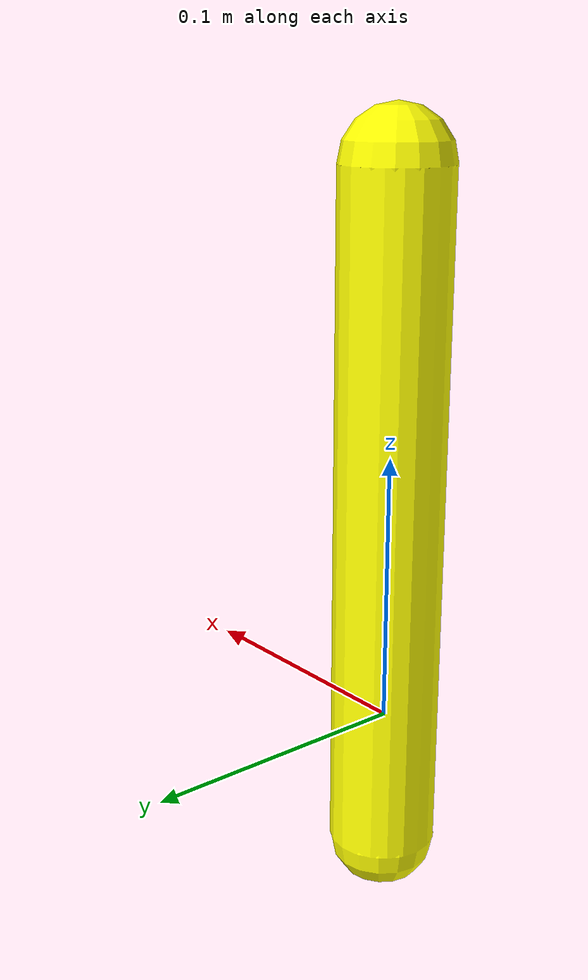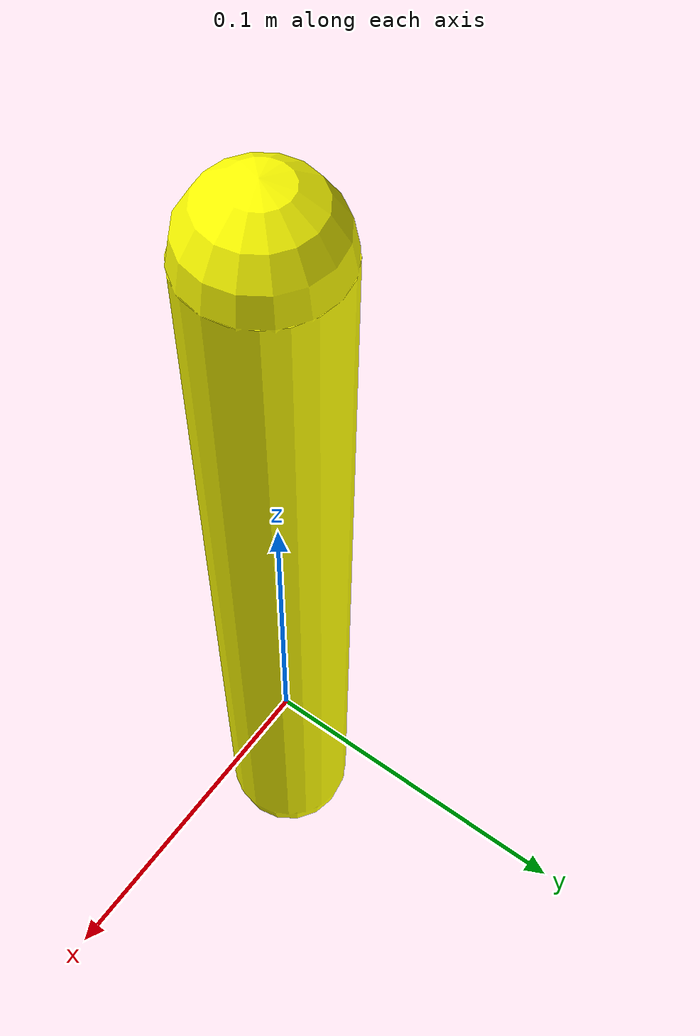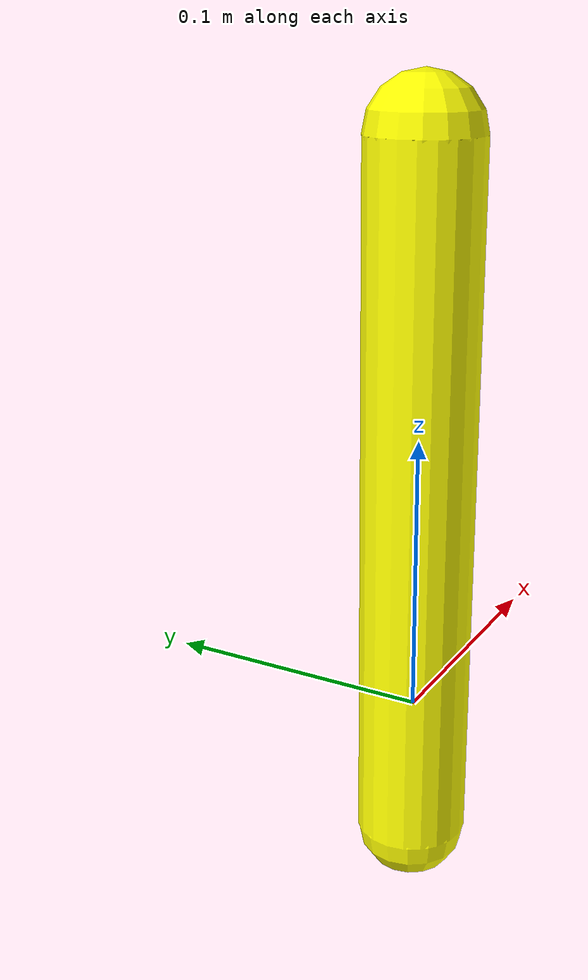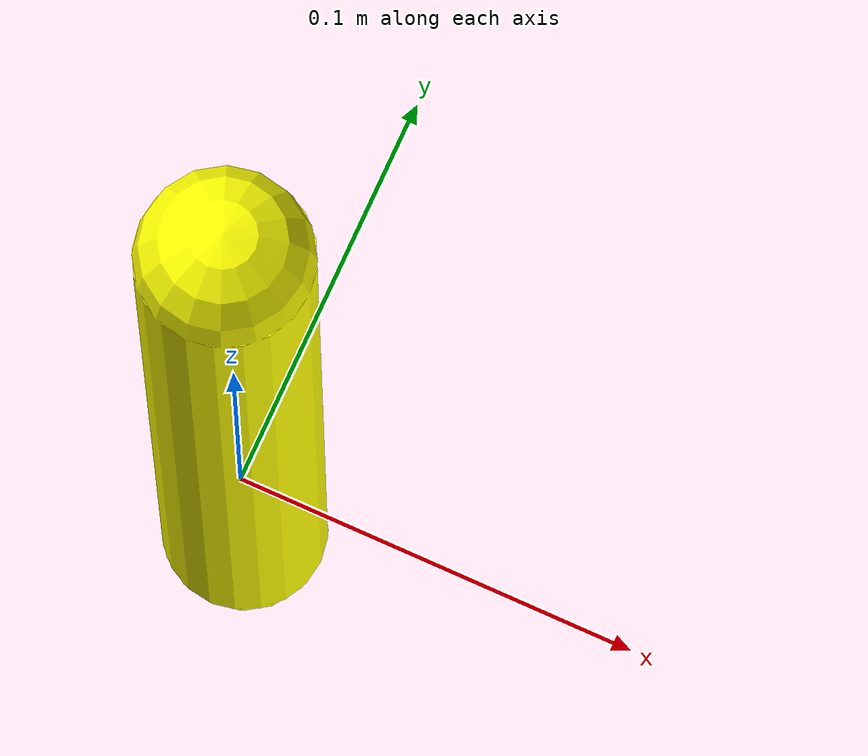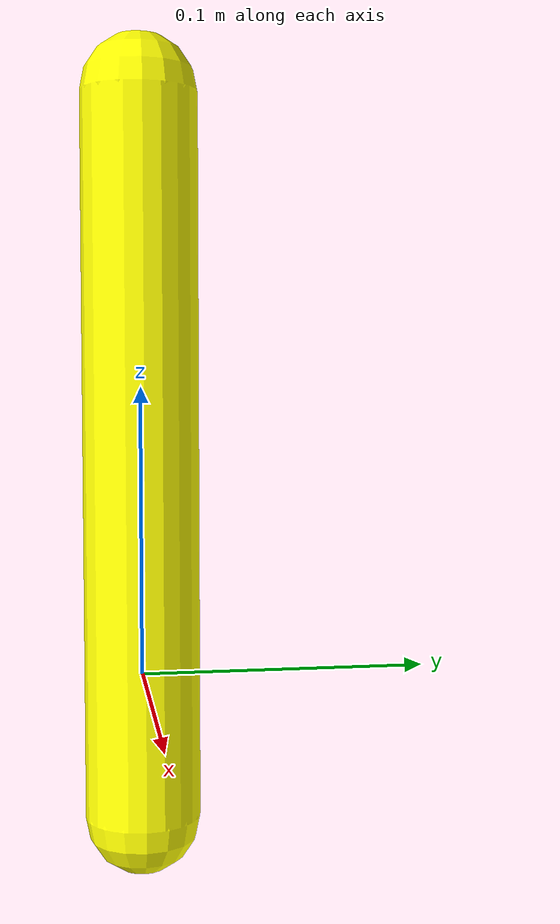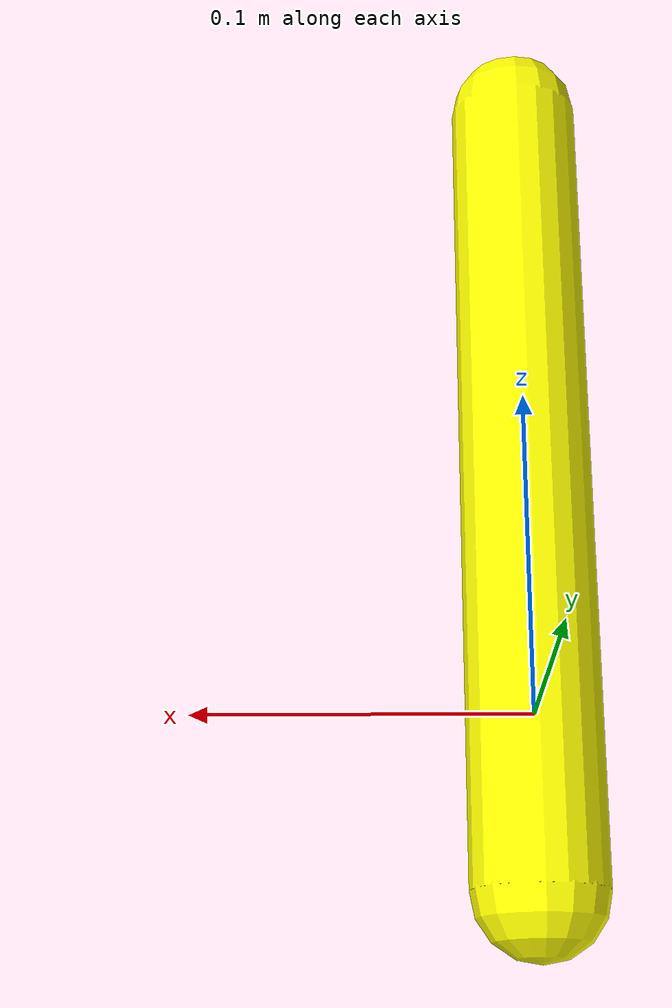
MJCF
<mujoco>
  <option timestep=".001">
  </option>

  <default>
    <joint type="hinge" axis="0 -1 0"/>
    <geom type="capsule" size=".02"/>
  </default>

  <worldbody>
    <light pos="0 -.4 1"/>
    <camera name="fixed" pos="0 -1 0" xyaxes="1 0 0 0 0 1"/>
    <body name="base" pos="0 0 .2">
      <joint type="free" name="root"/>
      <geom fromto="0 0 0 0 0 -.25" rgba="1 1 0 1"/>
    </body>
  </worldbody>
</mujoco>
